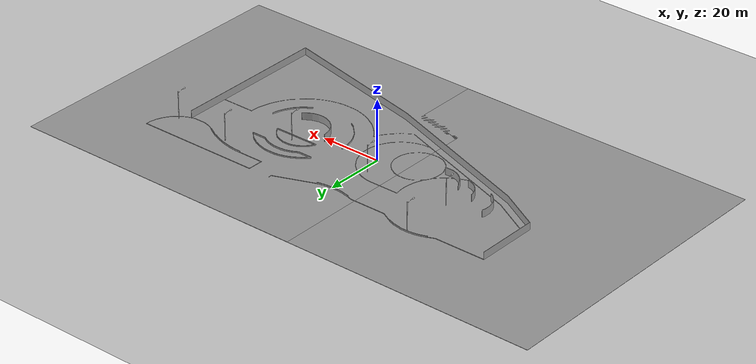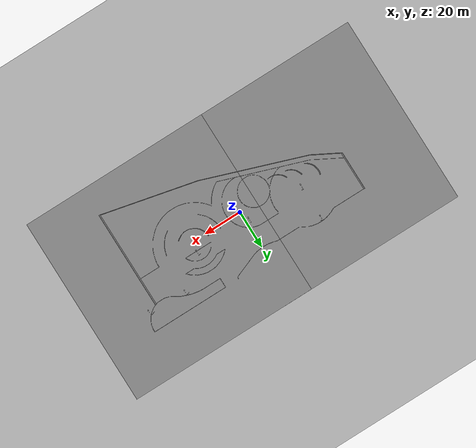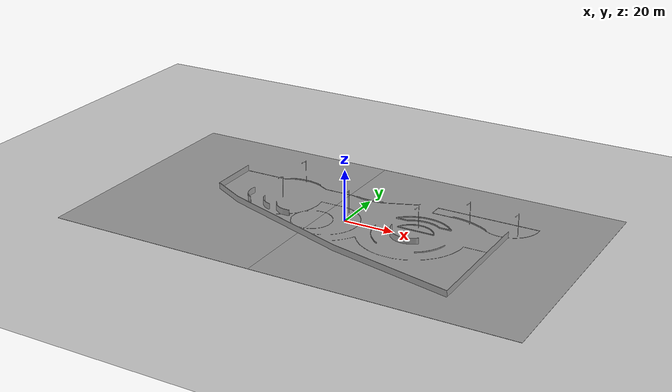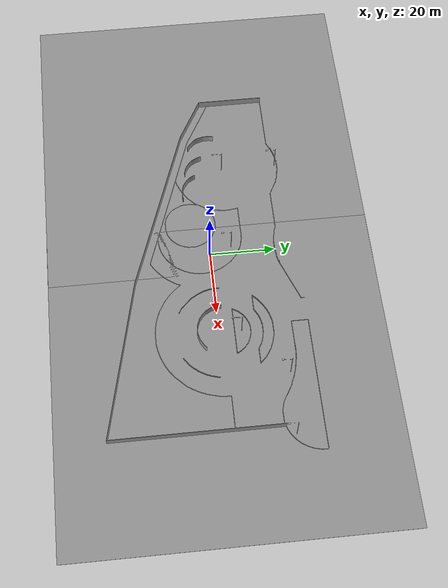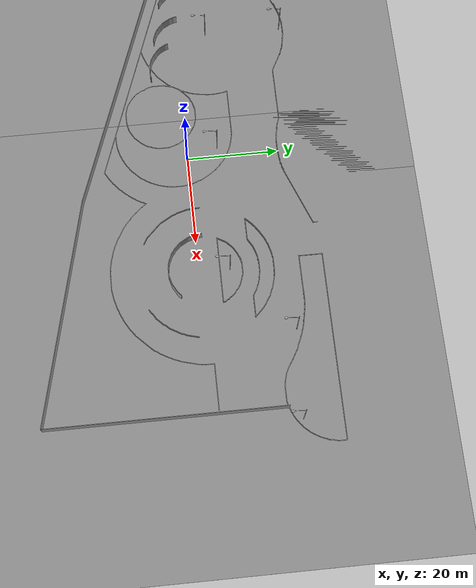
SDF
<sdf version="1.6">
 <world name="default">
  <light name="sun" type="directional">
   <pose>0 0 10 0 -0 0</pose>
   <diffuse>0.8 0.8 0.8 1</diffuse>
   <specular>0.2 0.2 0.2 1</specular>
   <attenuation>
    <range>1000</range>
    <constant>0.9</constant>
    <linear>0.01</linear>
    <quadratic>0.001</quadratic>
   </attenuation>
   <direction>-0.5 0.1 -0.9</direction>
  </light>
  <model name="ground_plane">
   <static>1</static>
   <link name="link">
    <collision name="collision">
     <geometry><plane><normal>0 0 1</normal><size>100 100</size></plane></geometry>
     <surface><friction><ode><mu>100</mu><mu2>50</mu2></ode></friction></surface>
    </collision>
    <visual name="visual">
     <cast_shadows>0</cast_shadows>
     <geometry><plane><normal>0 0 1</normal><size>100 100</size></plane></geometry>
     <material>
      <script><uri>file://media/materials/scripts/gazebo.material</uri><name>Gazebo/Grey</name></script>
     </material>
    </visual>
   </link>
  </model>
  <gravity>0 0 -9.8</gravity>
  <magnetic_field>6e-06 2.3e-05 -4.2e-05</magnetic_field>
  <atmosphere type="adiabatic"/>
  <physics name="default_physics" default="0" type="ode">
   <max_step_size>0.001</max_step_size>
   <real_time_factor>1</real_time_factor>
   <real_time_update_rate>1000</real_time_update_rate>
  </physics>
  <scene><ambient>0.4 0.4 0.4 1</ambient><background>0.7 0.7 0.7 1</background><shadows>1</shadows></scene>
  <audio><device>default</device></audio>
  <spherical_coordinates>
   <surface_model>EARTH_WGS84</surface_model>
   <latitude_deg>0</latitude_deg>
   <longitude_deg>0</longitude_deg>
   <elevation>0</elevation>
   <heading_deg>0</heading_deg>
  </spherical_coordinates>
  <model name="MundoSenai">
   <link name="link_0">
    <inertial>
     <mass>214514</mass>
     <inertia>
      <ixx>5.6591e+07</ixx>
      <ixy>2.04494e+07</ixy>
      <ixz>1.06209e+06</ixz>
      <iyy>2.28534e+08</iyy>
      <iyz>1.08688e+06</iyz>
      <izz>2.8495e+08</izz>
     </inertia>
    </inertial>
    <pose>2.8e-05 -5e-06 0 0 -0 0</pose>
    <visual name="visual">
     <geometry><mesh><uri>model://mundosenai/MundoSenaiFinal.stl</uri><scale>0.1 0.1 0.1</scale></mesh></geometry>
     <material>
      <lighting>1</lighting>
      <script><uri>file://media/materials/scripts/gazebo.material</uri><name>Gazebo/Grey</name></script>
      <shader type="vertex"><normal_map>__default__</normal_map></shader>
      <ambient>0.3 0.3 0.3 1</ambient>
      <diffuse>0.7 0.7 0.7 1</diffuse>
      <specular>0.01 0.01 0.01 1</specular>
      <emissive>0 0 0 1</emissive>
     </material>
    </visual>
    <collision name="collision">
     <geometry><mesh><uri>model://mundosenai/MundoSenaiFinal.stl</uri><scale>0.1 0.1 0.1</scale></mesh></geometry>
     <surface>
      <friction>
       <ode><mu>1</mu><mu2>1</mu2><fdir1>0 0 0</fdir1><slip1>0</slip1><slip2>0</slip2></ode>
       <torsional>
        <coefficient>1</coefficient>
        <patch_radius>0</patch_radius>
        <surface_radius>0</surface_radius>
        <use_patch_radius>1</use_patch_radius>
        <ode><slip>0</slip></ode>
       </torsional>
      </friction>
      <bounce><restitution_coefficient>0</restitution_coefficient><threshold>1e+06</threshold></bounce>
      <contact>
       <collide_without_contact>0</collide_without_contact>
       <collide_without_contact_bitmask>1</collide_without_contact_bitmask>
       <collide_bitmask>1</collide_bitmask>
       <ode>
        <soft_cfm>0</soft_cfm>
        <soft_erp>0.2</soft_erp>
        <kp>1e+13</kp>
        <kd>1</kd>
        <max_vel>0.01</max_vel>
        <min_depth>0</min_depth>
       </ode>
       <bullet>
        <split_impulse>1</split_impulse>
        <split_impulse_penetration_threshold>-0.01</split_impulse_penetration_threshold>
        <soft_cfm>0</soft_cfm>
        <soft_erp>0.2</soft_erp>
        <kp>1e+13</kp>
        <kd>1</kd>
       </bullet>
      </contact>
     </surface>
    </collision>
   </link>
   <static>0</static>
   <pose>-66.7861 39.8005 0.080018 0.001241 -0.000104 0.000349</pose>
  </model>
  <model name="Lamp Post">
   <static>1</static>
   <link name="link">
    <collision name="collision">
     <geometry><mesh><uri>model://lamp_post/meshes/lamp_post.dae</uri><scale>3 3 3</scale></mesh></geometry>
    </collision>
    <visual name="visual">
     <geometry><mesh><uri>model://lamp_post/meshes/lamp_post.dae</uri><scale>3 3 3</scale></mesh></geometry>
    </visual>
   </link>
   <pose>26.7274 6.76021 0 0 -0 0</pose>
  </model>
  <model name="Lamp Post_0">
   <static>1</static>
   <link name="link">
    <collision name="collision">
     <geometry><mesh><uri>model://lamp_post/meshes/lamp_post.dae</uri><scale>3 3 3</scale></mesh></geometry>
    </collision>
    <visual name="visual">
     <geometry><mesh><uri>model://lamp_post/meshes/lamp_post.dae</uri><scale>3 3 3</scale></mesh></geometry>
    </visual>
   </link>
   <pose>60.4912 18.5647 0 0 -0 0</pose>
  </model>
  <model name="Lamp Post_1">
   <static>1</static>
   <link name="link">
    <collision name="collision">
     <geometry><mesh><uri>model://lamp_post/meshes/lamp_post.dae</uri><scale>3 3 3</scale></mesh></geometry>
    </collision>
    <visual name="visual">
     <geometry><mesh><uri>model://lamp_post/meshes/lamp_post.dae</uri><scale>3 3 3</scale></mesh></geometry>
    </visual>
   </link>
   <pose>41.3136 19.4543 0 0 -0 0</pose>
  </model>
  <model name="Lamp Post_2">
   <static>1</static>
   <link name="link">
    <collision name="collision">
     <geometry><mesh><uri>model://lamp_post/meshes/lamp_post.dae</uri><scale>3 3 3</scale></mesh></geometry>
    </collision>
    <visual name="visual">
     <geometry><mesh><uri>model://lamp_post/meshes/lamp_post.dae</uri><scale>3 3 3</scale></mesh></geometry>
    </visual>
   </link>
   <pose>-2.01922 6.74253 0 0 -0 0</pose>
  </model>
  <model name="Lamp Post_3">
   <static>1</static>
   <link name="link">
    <collision name="collision">
     <geometry><mesh><uri>model://lamp_post/meshes/lamp_post.dae</uri><scale>3 3 3</scale></mesh></geometry>
    </collision>
    <visual name="visual">
     <geometry><mesh><uri>model://lamp_post/meshes/lamp_post.dae</uri><scale>3 3 3</scale></mesh></geometry>
    </visual>
   </link>
   <pose>-30.8343 23.8621 0 0 -0 0</pose>
  </model>
  <model name="Lamp Post_4">
   <static>1</static>
   <link name="link">
    <collision name="collision">
     <geometry><mesh><uri>model://lamp_post/meshes/lamp_post.dae</uri><scale>3 3 3</scale></mesh></geometry>
    </collision>
    <visual name="visual">
     <geometry><mesh><uri>model://lamp_post/meshes/lamp_post.dae</uri><scale>3 3 3</scale></mesh></geometry>
    </visual>
   </link>
   <pose>-30.8497 6.73528 0 0 -0 0</pose>
  </model>
  <model name="ground_plane_0">
   <static>1</static>
   <link name="link">
    <collision name="collision">
     <geometry><plane><normal>0 0 1</normal><size>100 100</size></plane></geometry>
     <surface>
      <contact><collide_bitmask>65535</collide_bitmask></contact>
      <friction><ode><mu>100</mu><mu2>50</mu2></ode></friction>
     </surface>
    </collision>
    <visual name="visual">
     <cast_shadows>0</cast_shadows>
     <geometry><plane><normal>0 0 1</normal><size>100 100</size></plane></geometry>
     <material>
      <script><uri>file://media/materials/scripts/gazebo.material</uri><name>Gazebo/Grey</name></script>
     </material>
    </visual>
   </link>
   <pose>40.4868 -0.076481 0 0 -0 0</pose>
  </model>
  <model name="ground_plane_1">
   <static>1</static>
   <link name="link">
    <collision name="collision">
     <geometry><plane><normal>0 0 1</normal><size>100 100</size></plane></geometry>
     <surface>
      <contact><collide_bitmask>65535</collide_bitmask></contact>
      <friction><ode><mu>100</mu><mu2>50</mu2></ode></friction>
     </surface>
    </collision>
    <visual name="visual">
     <cast_shadows>0</cast_shadows>
     <geometry><plane><normal>0 0 1</normal><size>100 100</size></plane></geometry>
     <material>
      <script><uri>file://media/materials/scripts/gazebo.material</uri><name>Gazebo/Grey</name></script>
     </material>
    </visual>
   </link>
   <pose>-43.3439 -0.039925 0 0 -0 0</pose>
  </model>
 </world>
</sdf>
